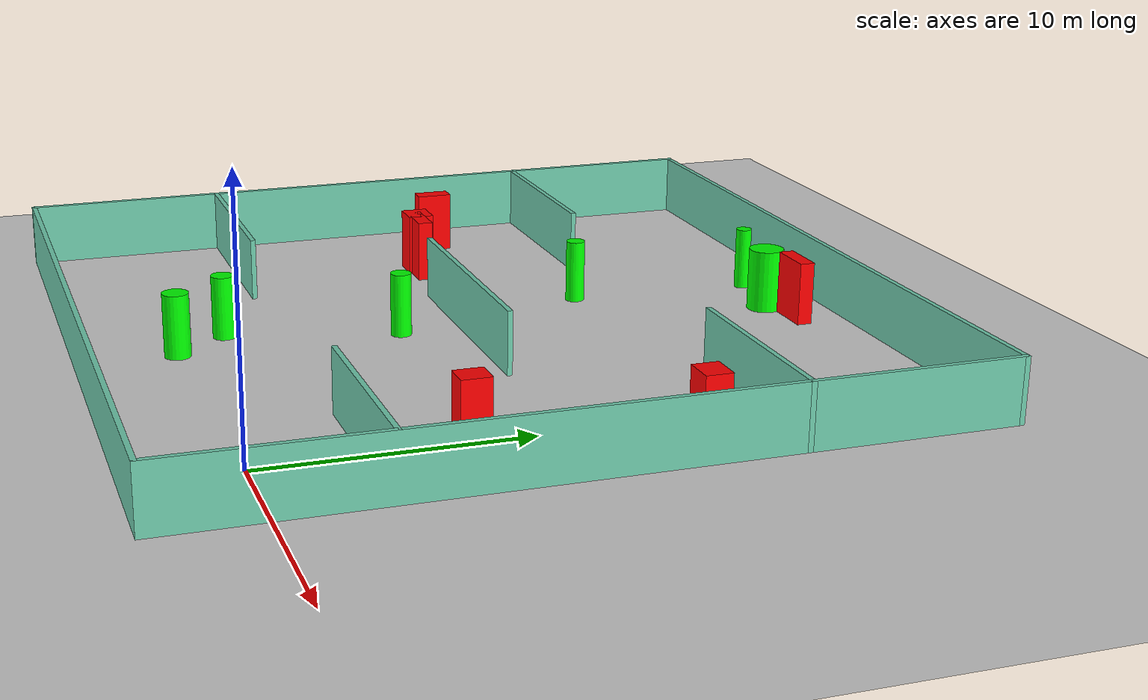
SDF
<sdf version="1.7">
 <world name="default">
  <light name="sun" type="directional">
   <pose>0 0 10 0 -0 0</pose>
   <diffuse>0.8 0.8 0.8 1</diffuse>
   <specular>0.2 0.2 0.2 1</specular>
   <attenuation>
    <range>1000</range>
    <constant>0.9</constant>
    <linear>0.01</linear>
    <quadratic>0.001</quadratic>
   </attenuation>
   <direction>-0.5 0.1 -0.9</direction>
   <spot><inner_angle>0</inner_angle><outer_angle>0</outer_angle><falloff>0</falloff></spot>
  </light>
  <model name="ground_plane">
   <static>1</static>
   <link name="link">
    <collision name="collision">
     <geometry><plane><normal>0 0 1</normal><size>100 100</size></plane></geometry>
     <surface>
      <contact><collide_bitmask>65535</collide_bitmask></contact>
      <friction><ode><mu>100</mu><mu2>50</mu2></ode></friction>
     </surface>
    </collision>
    <visual name="visual">
     <cast_shadows>0</cast_shadows>
     <geometry><plane><normal>0 0 1</normal><size>100 100</size></plane></geometry>
     <material>
      <script><uri>file://media/materials/scripts/gazebo.material</uri><name>Gazebo/Grey</name></script>
     </material>
    </visual>
   </link>
  </model>
  <gravity>0 0 -9.8</gravity>
  <magnetic_field>6e-06 2.3e-05 -4.2e-05</magnetic_field>
  <atmosphere type="adiabatic"/>
  <physics type="ode">
   <max_step_size>0.001</max_step_size>
   <real_time_factor>1</real_time_factor>
   <real_time_update_rate>1000</real_time_update_rate>
  </physics>
  <scene><ambient>0.4 0.4 0.4 1</ambient><background>0.7 0.7 0.7 1</background><shadows>1</shadows></scene>
  <spherical_coordinates>
   <surface_model>EARTH_WGS84</surface_model>
   <latitude_deg>0</latitude_deg>
   <longitude_deg>0</longitude_deg>
   <elevation>0</elevation>
   <heading_deg>0</heading_deg>
  </spherical_coordinates>
  <model name="my_base_walls">
   <link name="Wall_10">
    <collision name="Wall_10_Collision">
     <geometry><box><size>8.2 0.2 2.5</size></box></geometry>
     <pose>0 0 1.25 0 -0 0</pose>
    </collision>
    <visual name="Wall_10_Visual">
     <pose>0 0 1.25 0 -0 0</pose>
     <geometry><box><size>8.2 0.2 2.5</size></box></geometry>
     <material>
      <script><uri>file://media/materials/scripts/gazebo.material</uri><name>Gazebo/Grey</name></script>
      <ambient>0.435294 0.796078 0.67451 1</ambient>
     </material>
     <meta><layer>0</layer></meta>
    </visual>
    <pose>-11 -7 0 0 -0 0</pose>
   </link>
   <link name="Wall_12">
    <collision name="Wall_12_Collision">
     <geometry><box><size>8.2 0.2 2.5</size></box></geometry>
     <pose>0 0 1.25 0 -0 0</pose>
    </collision>
    <visual name="Wall_12_Visual">
     <pose>0 0 1.25 0 -0 0</pose>
     <geometry><box><size>8.2 0.2 2.5</size></box></geometry>
     <material>
      <script><uri>file://media/materials/scripts/gazebo.material</uri><name>Gazebo/Grey</name></script>
      <ambient>0.435294 0.796078 0.67451 1</ambient>
     </material>
     <meta><layer>0</layer></meta>
    </visual>
    <pose>-11 7 0 0 -0 0</pose>
   </link>
   <link name="Wall_14">
    <collision name="Wall_14_Collision">
     <geometry><box><size>8.2 0.2 2.5</size></box></geometry>
     <pose>0 0 1.25 0 -0 0</pose>
    </collision>
    <visual name="Wall_14_Visual">
     <pose>0 0 1.25 0 -0 0</pose>
     <geometry><box><size>8.2 0.2 2.5</size></box></geometry>
     <material>
      <script><uri>file://media/materials/scripts/gazebo.material</uri><name>Gazebo/Grey</name></script>
      <ambient>0.435294 0.796078 0.67451 1</ambient>
     </material>
     <meta><layer>0</layer></meta>
    </visual>
    <pose>11 7 0 0 -0 3.14159</pose>
   </link>
   <link name="Wall_16">
    <collision name="Wall_16_Collision">
     <geometry><box><size>10.2 0.2 2.5</size></box></geometry>
     <pose>0 0 1.25 0 -0 0</pose>
    </collision>
    <visual name="Wall_16_Visual">
     <pose>0 0 1.25 0 -0 0</pose>
     <geometry><box><size>10.2 0.2 2.5</size></box></geometry>
     <material>
      <script><uri>file://media/materials/scripts/gazebo.material</uri><name>Gazebo/Grey</name></script>
      <ambient>0.435294 0.796078 0.67451 1</ambient>
     </material>
     <meta><layer>0</layer></meta>
    </visual>
    <pose>0 0 0 0 -0 3.14159</pose>
   </link>
   <link name="Wall_2">
    <collision name="Wall_2_Collision">
     <geometry><box><size>30.2 0.2 2.5</size></box></geometry>
     <pose>0 0 1.25 0 -0 0</pose>
    </collision>
    <visual name="Wall_2_Visual">
     <pose>0 0 1.25 0 -0 0</pose>
     <geometry><box><size>30.2 0.2 2.5</size></box></geometry>
     <material>
      <script><uri>file://media/materials/scripts/gazebo.material</uri><name>Gazebo/Grey</name></script>
      <ambient>0.435294 0.796078 0.67451 1</ambient>
     </material>
     <meta><layer>0</layer></meta>
    </visual>
    <pose>0 -15 0 0 -0 3.14159</pose>
   </link>
   <link name="Wall_3">
    <collision name="Wall_3_Collision">
     <geometry><box><size>30.2 0.2 2.5</size></box></geometry>
     <pose>0 0 1.25 0 -0 0</pose>
    </collision>
    <visual name="Wall_3_Visual">
     <pose>0 0 1.25 0 -0 0</pose>
     <geometry><box><size>30.2 0.2 2.5</size></box></geometry>
     <material>
      <script><uri>file://media/materials/scripts/gazebo.material</uri><name>Gazebo/Grey</name></script>
      <ambient>0.435294 0.796078 0.67451 1</ambient>
     </material>
     <meta><layer>0</layer></meta>
    </visual>
    <pose>-15 0 0 0 -0 1.5708</pose>
   </link>
   <link name="Wall_4">
    <collision name="Wall_4_Collision">
     <geometry><box><size>30.2 0.2 2.5</size></box></geometry>
     <pose>0 0 1.25 0 -0 0</pose>
    </collision>
    <visual name="Wall_4_Visual">
     <pose>0 0 1.25 0 -0 0</pose>
     <geometry><box><size>30.2 0.2 2.5</size></box></geometry>
     <material>
      <script><uri>file://media/materials/scripts/gazebo.material</uri><name>Gazebo/Grey</name></script>
      <ambient>0.435294 0.796078 0.67451 1</ambient>
     </material>
     <meta><layer>0</layer></meta>
    </visual>
    <pose>0 15 0 0 -0 0</pose>
   </link>
   <link name="Wall_6">
    <collision name="Wall_6_Collision">
     <geometry><box><size>30.2 0.2 2.5</size></box></geometry>
     <pose>0 0 1.25 0 -0 0</pose>
    </collision>
    <visual name="Wall_6_Visual">
     <pose>0 0 1.25 0 -0 0</pose>
     <geometry><box><size>30.2 0.2 2.5</size></box></geometry>
     <material>
      <script><uri>file://media/materials/scripts/gazebo.material</uri><name>Gazebo/Grey</name></script>
      <ambient>0.435294 0.796078 0.67451 1</ambient>
     </material>
     <meta><layer>0</layer></meta>
    </visual>
    <pose>15 0 0 0 -0 1.5708</pose>
   </link>
   <link name="Wall_8">
    <collision name="Wall_8_Collision">
     <geometry><box><size>8.2 0.2 2.5</size></box></geometry>
     <pose>0 0 1.25 0 -0 0</pose>
    </collision>
    <visual name="Wall_8_Visual">
     <pose>0 0 1.25 0 -0 0</pose>
     <geometry><box><size>8.2 0.2 2.5</size></box></geometry>
     <material>
      <script><uri>file://media/materials/scripts/gazebo.material</uri><name>Gazebo/Grey</name></script>
      <ambient>0.435294 0.796078 0.67451 1</ambient>
     </material>
     <meta><layer>0</layer></meta>
    </visual>
    <pose>11 -7 0 0 -0 3.14159</pose>
   </link>
   <static>1</static>
   <pose>-11 11 0 0 -0 0</pose>
  </model>
  <model name="cylinder1">
   <static>1</static>
   <link name="link">
    <inertial>
     <mass>1</mass>
     <inertia><ixx>0.5</ixx><ixy>0</ixy><ixz>0</ixz><iyy>0.5</iyy><iyz>0</iyz><izz>1</izz></inertia>
    </inertial>
    <collision name="collision">
     <geometry><cylinder><radius>0.4471182034306689</radius><length>2.5</length></cylinder></geometry>
    </collision>
    <visual name="visual">
     <geometry><cylinder><radius>0.4471182034306689</radius><length>2.5</length></cylinder></geometry>
     <material>
      <ambient>0 1 0 1</ambient>
      <diffuse>0 1 0 1</diffuse>
      <specular>0.1 0.1 0.1 1</specular>
      <emissive>0 0 0 0</emissive>
     </material>
    </visual>
   </link>
   <pose>-13.446389216465583 1.887059090133942 1.25 0 0 0</pose>
  </model>
  <model name="cylinder2">
   <static>1</static>
   <link name="link">
    <inertial>
     <mass>1</mass>
     <inertia><ixx>0.5</ixx><ixy>0</ixy><ixz>0</ixz><iyy>0.5</iyy><iyz>0</iyz><izz>1</izz></inertia>
    </inertial>
    <collision name="collision">
     <geometry><cylinder><radius>0.4029373068619979</radius><length>2.5</length></cylinder></geometry>
    </collision>
    <visual name="visual">
     <geometry><cylinder><radius>0.4029373068619979</radius><length>2.5</length></cylinder></geometry>
     <material>
      <ambient>0 1 0 1</ambient>
      <diffuse>0 1 0 1</diffuse>
      <specular>0.1 0.1 0.1 1</specular>
      <emissive>0 0 0 0</emissive>
     </material>
    </visual>
   </link>
   <pose>-11.655683791980469 8.510248730342514 1.25 0 0 0</pose>
  </model>
  <model name="cylinder3">
   <static>1</static>
   <link name="link">
    <inertial>
     <mass>1</mass>
     <inertia><ixx>0.5</ixx><ixy>0</ixy><ixz>0</ixz><iyy>0.5</iyy><iyz>0</iyz><izz>1</izz></inertia>
    </inertial>
    <collision name="collision">
     <geometry><cylinder><radius>0.3133991995737979</radius><length>2.5</length></cylinder></geometry>
    </collision>
    <visual name="visual">
     <geometry><cylinder><radius>0.3133991995737979</radius><length>2.5</length></cylinder></geometry>
     <material>
      <ambient>0 1 0 1</ambient>
      <diffuse>0 1 0 1</diffuse>
      <specular>0.1 0.1 0.1 1</specular>
      <emissive>0 0 0 0</emissive>
     </material>
    </visual>
   </link>
   <pose>-13.394751672529905 23.904275828986407 1.25 0 0 0</pose>
  </model>
  <model name="cylinder4">
   <static>1</static>
   <link name="link">
    <inertial>
     <mass>1</mass>
     <inertia><ixx>0.5</ixx><ixy>0</ixy><ixz>0</ixz><iyy>0.5</iyy><iyz>0</iyz><izz>1</izz></inertia>
    </inertial>
    <collision name="collision">
     <geometry><cylinder><radius>0.37497312221168083</radius><length>2.5</length></cylinder></geometry>
    </collision>
    <visual name="visual">
     <geometry><cylinder><radius>0.37497312221168083</radius><length>2.5</length></cylinder></geometry>
     <material>
      <ambient>0 1 0 1</ambient>
      <diffuse>0 1 0 1</diffuse>
      <specular>0.1 0.1 0.1 1</specular>
      <emissive>0 0 0 0</emissive>
     </material>
    </visual>
   </link>
   <pose>-13.816709496394768 16.546683902232456 1.25 0 0 0</pose>
  </model>
  <model name="cylinder5">
   <static>1</static>
   <link name="link">
    <inertial>
     <mass>1</mass>
     <inertia><ixx>0.5</ixx><ixy>0</ixy><ixz>0</ixz><iyy>0.5</iyy><iyz>0</iyz><izz>1</izz></inertia>
    </inertial>
    <collision name="collision">
     <geometry><cylinder><radius>0.6912744306170246</radius><length>2.5</length></cylinder></geometry>
    </collision>
    <visual name="visual">
     <geometry><cylinder><radius>0.6912744306170246</radius><length>2.5</length></cylinder></geometry>
     <material>
      <ambient>0 1 0 1</ambient>
      <diffuse>0 1 0 1</diffuse>
      <specular>0.1 0.1 0.1 1</specular>
      <emissive>0 0 0 0</emissive>
     </material>
    </visual>
   </link>
   <pose>-10.426581471754409 23.471936503110534 1.25 0 0 0</pose>
  </model>
  <model name="cylinder6">
   <static>1</static>
   <link name="link">
    <inertial>
     <mass>1</mass>
     <inertia><ixx>0.5</ixx><ixy>0</ixy><ixz>0</ixz><iyy>0.5</iyy><iyz>0</iyz><izz>1</izz></inertia>
    </inertial>
    <collision name="collision">
     <geometry><cylinder><radius>0.5117314574491416</radius><length>2.5</length></cylinder></geometry>
    </collision>
    <visual name="visual">
     <geometry><cylinder><radius>0.5117314574491416</radius><length>2.5</length></cylinder></geometry>
     <material>
      <ambient>0 1 0 1</ambient>
      <diffuse>0 1 0 1</diffuse>
      <specular>0.1 0.1 0.1 1</specular>
      <emissive>0 0 0 0</emissive>
     </material>
    </visual>
   </link>
   <pose>-11.766061473161246 -0.19936837210348735 1.25 0 0 0</pose>
  </model>
  <model name="box1">
   <static>1</static>
   <link name="link">
    <inertial>
     <mass>1</mass>
     <inertia><ixx>0.083</ixx><ixy>0</ixy><ixz>0</ixz><iyy>0.083</iyy><iyz>0</iyz><izz>0.083</izz></inertia>
    </inertial>
    <collision name="collision">
     <geometry><box><size>1.1862970067208924 1.0420328372725862 2.5</size></box></geometry>
    </collision>
    <visual name="visual">
     <geometry><box><size>1.1862970067208924 1.0420328372725862 2.5</size></box></geometry>
     <material>
      <ambient>1 0 0 1</ambient>
      <diffuse>1 0 0 1</diffuse>
      <specular>0.1 0.1 0.1 1</specular>
      <emissive>0 0 0 0</emissive>
     </material>
    </visual>
    <sensor name="my_contact" type="contact">
     <contact><collision>box_collision</collision><topic>__default_topic__</topic></contact>
    </sensor>
   </link>
   <pose>-19.982760426199867 11.610052208052698 1.25 0 0 0</pose>
  </model>
  <model name="box2">
   <static>1</static>
   <link name="link">
    <inertial>
     <mass>1</mass>
     <inertia><ixx>0.083</ixx><ixy>0</ixy><ixz>0</ixz><iyy>0.083</iyy><iyz>0</iyz><izz>0.083</izz></inertia>
    </inertial>
    <collision name="collision">
     <geometry><box><size>1.8370635058199678 0.5894029671514132 2.5</size></box></geometry>
    </collision>
    <visual name="visual">
     <geometry><box><size>1.8370635058199678 0.5894029671514132 2.5</size></box></geometry>
     <material>
      <ambient>1 0 0 1</ambient>
      <diffuse>1 0 0 1</diffuse>
      <specular>0.1 0.1 0.1 1</specular>
      <emissive>0 0 0 0</emissive>
     </material>
    </visual>
    <sensor name="my_contact" type="contact">
     <contact><collision>box_collision</collision><topic>__default_topic__</topic></contact>
    </sensor>
   </link>
   <pose>-8.901047717748241 24.044856993610495 1.25 0 0 0</pose>
  </model>
  <model name="box3">
   <static>1</static>
   <link name="link">
    <inertial>
     <mass>1</mass>
     <inertia><ixx>0.083</ixx><ixy>0</ixy><ixz>0</ixz><iyy>0.083</iyy><iyz>0</iyz><izz>0.083</izz></inertia>
    </inertial>
    <collision name="collision">
     <geometry><box><size>1.203226748488634 1.0142766249054933 2.5</size></box></geometry>
    </collision>
    <visual name="visual">
     <geometry><box><size>1.203226748488634 1.0142766249054933 2.5</size></box></geometry>
     <material>
      <ambient>1 0 0 1</ambient>
      <diffuse>1 0 0 1</diffuse>
      <specular>0.1 0.1 0.1 1</specular>
      <emissive>0 0 0 0</emissive>
     </material>
    </visual>
    <sensor name="my_contact" type="contact">
     <contact><collision>box_collision</collision><topic>__default_topic__</topic></contact>
    </sensor>
   </link>
   <pose>1.9666873437175028 15.35682275017954 1.25 0 0 0</pose>
  </model>
  <model name="box4">
   <static>1</static>
   <link name="link">
    <inertial>
     <mass>1</mass>
     <inertia><ixx>0.083</ixx><ixy>0</ixy><ixz>0</ixz><iyy>0.083</iyy><iyz>0</iyz><izz>0.083</izz></inertia>
    </inertial>
    <collision name="collision">
     <geometry><box><size>1.0226765655958503 1.1316830049733935 2.5</size></box></geometry>
    </collision>
    <visual name="visual">
     <geometry><box><size>1.0226765655958503 1.1316830049733935 2.5</size></box></geometry>
     <material>
      <ambient>1 0 0 1</ambient>
      <diffuse>1 0 0 1</diffuse>
      <specular>0.1 0.1 0.1 1</specular>
      <emissive>0 0 0 0</emissive>
     </material>
    </visual>
    <sensor name="my_contact" type="contact">
     <contact><collision>box_collision</collision><topic>__default_topic__</topic></contact>
    </sensor>
   </link>
   <pose>0.011095281974377258 7.650417791733322 1.25 0 0 0</pose>
  </model>
  <model name="box5">
   <static>1</static>
   <link name="link">
    <inertial>
     <mass>1</mass>
     <inertia><ixx>0.083</ixx><ixy>0</ixy><ixz>0</ixz><iyy>0.083</iyy><iyz>0</iyz><izz>0.083</izz></inertia>
    </inertial>
    <collision name="collision">
     <geometry><box><size>0.6904256818810912 1.4450760321454972 2.5</size></box></geometry>
    </collision>
    <visual name="visual">
     <geometry><box><size>0.6904256818810912 1.4450760321454972 2.5</size></box></geometry>
     <material>
      <ambient>1 0 0 1</ambient>
      <diffuse>1 0 0 1</diffuse>
      <specular>0.1 0.1 0.1 1</specular>
      <emissive>0 0 0 0</emissive>
     </material>
    </visual>
    <sensor name="my_contact" type="contact">
     <contact><collision>box_collision</collision><topic>__default_topic__</topic></contact>
    </sensor>
   </link>
   <pose>-22.951158228416702 13.179918428139402 1.25 0 0 0</pose>
  </model>
  <model name="box6">
   <static>1</static>
   <link name="link">
    <inertial>
     <mass>1</mass>
     <inertia><ixx>0.083</ixx><ixy>0</ixy><ixz>0</ixz><iyy>0.083</iyy><iyz>0</iyz><izz>0.083</izz></inertia>
    </inertial>
    <collision name="collision">
     <geometry><box><size>1.832192520098706 0.5941435264878439 2.5</size></box></geometry>
    </collision>
    <visual name="visual">
     <geometry><box><size>1.832192520098706 0.5941435264878439 2.5</size></box></geometry>
     <material>
      <ambient>1 0 0 1</ambient>
      <diffuse>1 0 0 1</diffuse>
      <specular>0.1 0.1 0.1 1</specular>
      <emissive>0 0 0 0</emissive>
     </material>
    </visual>
    <sensor name="my_contact" type="contact">
     <contact><collision>box_collision</collision><topic>__default_topic__</topic></contact>
    </sensor>
   </link>
   <pose>-19.247744907334297 11.484077152318477 1.25 0 0 0</pose>
  </model>
 </world>
</sdf>
